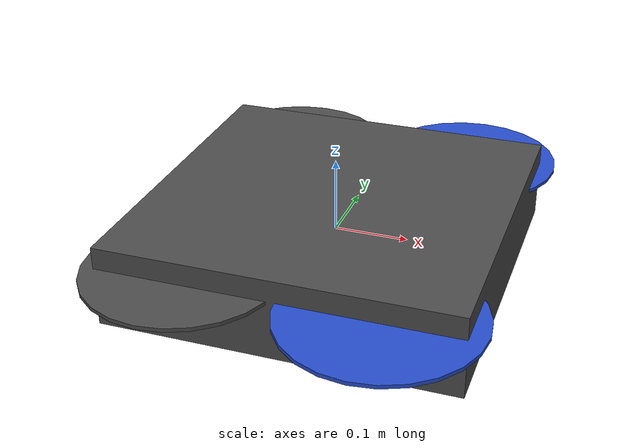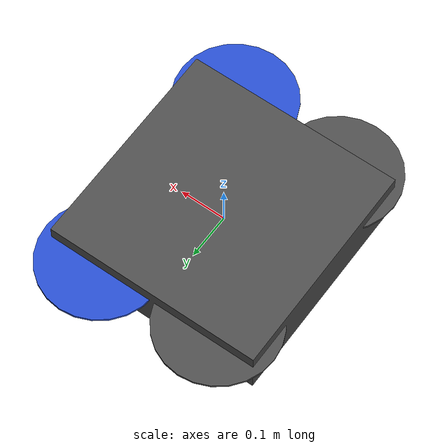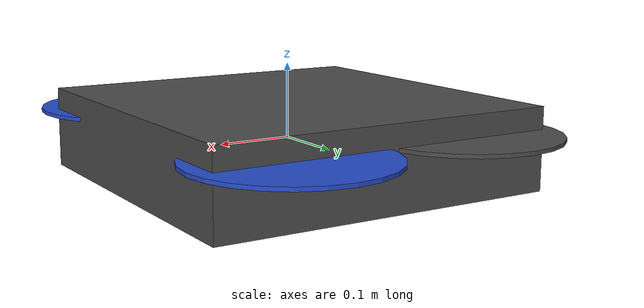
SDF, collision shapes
<?xml version="1.0"?>
<sdf version='1.6'>
  <model name='iris'>
    <link name='base_link'>
      <pose frame=''>0 0 0 0 -0 0</pose>
      <inertial>
        <pose frame=''>0.007977 0 -0.002393 0 -0 0</pose>
        <mass>1.63003</mass>
        <inertia>
          <ixx>0.0348681</ixx>
          <ixy>-5.91781e-08</ixy>
          <ixz>0.000358969</ixz>
          <iyy>0.0472013</iyy>
          <iyz>1.24503e-08</iyz>
          <izz>0.0989008</izz>
        </inertia>
      </inertial>
      <collision name='base_link_inertia_collision'>
        <pose frame=''>0 0 0 0 -0 0</pose>
        <geometry>
          <box>
            <size>0.47 0.47 0.11</size>
          </box>
        </geometry>
        <surface>
          <contact>
            <ode>
              <min_depth>0.001</min_depth>
              <max_vel>0</max_vel>
            </ode>
          </contact>
          <friction>
            <ode/>
          </friction>
        </surface>
      </collision>
      <collision name='base_link_fixed_joint_lump__/vi_sensor/vi_sensor_link_collision_1'>
        <pose frame=''>0.1 0 -0.03 0 0.1 0</pose>
        <geometry>
          <box>
            <size>0.03 0.133 0.057</size>
          </box>
        </geometry>
      </collision>
      <collision name='base_link_fixed_joint_lump__/vi_sensor/camera_depth_link_collision_2'>
        <pose frame=''>0.115574 0.055 -0.02503 0 0.1 0</pose>
        <geometry>
          <cylinder>
            <length>0.01</length>
            <radius>0.007</radius>
          </cylinder>
        </geometry>
        <surface>
          <contact>
            <ode/>
          </contact>
          <friction>
            <ode/>
          </friction>
        </surface>
      </collision>
      <collision name='base_link_fixed_joint_lump__/vi_sensor/camera_left_link_collision_3'>
        <pose frame=''>0.115574 0.055 -0.02503 0 0.1 0</pose>
        <geometry>
          <cylinder>
            <length>0.01</length>
            <radius>0.007</radius>
          </cylinder>
        </geometry>
        <surface>
          <contact>
            <ode/>
          </contact>
          <friction>
            <ode/>
          </friction>
        </surface>
      </collision>
      <collision name='base_link_fixed_joint_lump__/vi_sensor/camera_right_link_collision_4'>
        <pose frame=''>0.115574 -0.055 -0.02503 0 0.1 0</pose>
        <geometry>
          <cylinder>
            <length>0.01</length>
            <radius>0.007</radius>
          </cylinder>
        </geometry>
        <surface>
          <contact>
            <ode/>
          </contact>
          <friction>
            <ode/>
          </friction>
        </surface>
      </collision>
      <visual name='base_link_inertia_visual'>
        <pose frame=''>0 0 0 0 -0 0</pose>
        <geometry>
          <mesh>
            <scale>1 1 1</scale>
            <uri>model://rotors_description/meshes/iris.stl</uri>
          </mesh>
        </geometry>
        <material>
          <script>
            <name>Gazebo/DarkGrey</name>
            <uri>file://media/materials/scripts/gazebo.material</uri>
          </script>
        </material>
      </visual>
      <visual name='base_link_fixed_joint_lump__/vi_sensor/vi_sensor_link_visual_1'>
        <pose frame=''>0.1 0 -0.03 0 0.1 0</pose>
        <geometry>
          <mesh>
            <scale>1 1 1</scale>
            <uri>model://rotors_description/meshes/vi_sensor.dae</uri>
          </mesh>
        </geometry>
      </visual>
      <velocity_decay/>
      <velocity_decay/>
      <sensor name='/vi_sensor_camera_{camera_suffix}' type='depth'>
        <always_on>1</always_on>
        <update_rate>30</update_rate>
        <camera name='__default__'>
          <horizontal_fov>2</horizontal_fov>
          <image>
            <format>L8</format>
            <width>640</width>
            <height>480</height>
          </image>
          <clip>
            <near>0.01</near>
            <far>100</far>
          </clip>
        </camera>
        <plugin name='/vi_sensor_camera_{camera_suffix}' filename='libgazebo_ros_openni_kinect.so'>
          <robotNamespace>/vi_sensor</robotNamespace>
          <alwaysOn>true</alwaysOn>
          <baseline>0.11</baseline>
          <updateRate>30.0</updateRate>
          <cameraName>camera_depth</cameraName>
          <imageTopicName>camera/image_raw</imageTopicName>
          <cameraInfoTopicName>camera/camera_info</cameraInfoTopicName>
          <depthImageTopicName>depth/disparity</depthImageTopicName>
          <depthImageCameraInfoTopicName>depth/camera_info</depthImageCameraInfoTopicName>
          <pointCloudTopicName>depth/points</pointCloudTopicName>
          <frameName>camera_depth_optical_center_link</frameName>
          <pointCloudCutoff>0.5</pointCloudCutoff>
          <distortionK1>0.0</distortionK1>
          <distortionK2>0.0</distortionK2>
          <distortionK3>0.0</distortionK3>
          <distortionT1>0.0</distortionT1>
          <distortionT2>0.0</distortionT2>
        </plugin>
        <pose frame=''>0.115574 0.055 -0.02503 0 0.1 0</pose>
      </sensor>
      <velocity_decay/>
      <sensor name='/vi_sensor_camera_left' type='camera'>
        <update_rate>30</update_rate>
        <camera name='head'>
          <horizontal_fov>1.39626</horizontal_fov>
          <image>
            <width>752</width>
            <height>480</height>
            <format>L8</format>
          </image>
          <clip>
            <near>0.02</near>
            <far>30</far>
          </clip>
          <noise>
            <type>gaussian</type>
            <mean>0</mean>
            <stddev>0.007</stddev>
          </noise>
        </camera>
        <plugin name='/vi_sensor_camera_left_controller' filename='libgazebo_ros_camera.so'>
          <robotNamespace>/vi_sensor</robotNamespace>
          <alwaysOn>true</alwaysOn>
          <updateRate>30.0</updateRate>
          <cameraName>camera_left</cameraName>
          <imageTopicName>image_raw</imageTopicName>
          <cameraInfoTopicName>camera_info</cameraInfoTopicName>
          <frameName>camera_left_link</frameName>
          <hackBaseline>0.0</hackBaseline>
          <distortionK1>0.0</distortionK1>
          <distortionK2>0.0</distortionK2>
          <distortionK3>0.0</distortionK3>
          <distortionT1>0.0</distortionT1>
          <distortionT2>0.0</distortionT2>
        </plugin>
        <pose frame=''>0.115574 0.055 -0.02503 0 0.1 0</pose>
      </sensor>
      <gravity>1</gravity>
      <velocity_decay/>
      <self_collide>0</self_collide>
      <sensor name='/vi_sensor_camera_right' type='camera'>
        <update_rate>30</update_rate>
        <camera name='head'>
          <horizontal_fov>1.39626</horizontal_fov>
          <image>
            <width>752</width>
            <height>480</height>
            <format>L8</format>
          </image>
          <clip>
            <near>0.02</near>
            <far>30</far>
          </clip>
          <noise>
            <type>gaussian</type>
            <mean>0</mean>
            <stddev>0.007</stddev>
          </noise>
        </camera>
        <plugin name='/vi_sensor_camera_right_controller' filename='libgazebo_ros_camera.so'>
          <robotNamespace>/vi_sensor</robotNamespace>
          <alwaysOn>true</alwaysOn>
          <updateRate>30.0</updateRate>
          <cameraName>camera_right</cameraName>
          <imageTopicName>image_raw</imageTopicName>
          <cameraInfoTopicName>camera_info</cameraInfoTopicName>
          <frameName>camera_right_link</frameName>
          <hackBaseline>0.0</hackBaseline>
          <distortionK1>0.0</distortionK1>
          <distortionK2>0.0</distortionK2>
          <distortionK3>0.0</distortionK3>
          <distortionT1>0.0</distortionT1>
          <distortionT2>0.0</distortionT2>
        </plugin>
        <pose frame=''>0.115574 -0.055 -0.02503 0 0.1 0</pose>
      </sensor>
    </link>
    <link name='/imu_link'>
      <pose frame=''>0 0 0 0 -0 0</pose>
      <inertial>
        <pose frame=''>0 0 0 0 -0 0</pose>
        <mass>0.015</mass>
        <inertia>
          <ixx>1e-05</ixx>
          <ixy>0</ixy>
          <ixz>0</ixz>
          <iyy>1e-05</iyy>
          <iyz>0</iyz>
          <izz>1e-05</izz>
        </inertia>
      </inertial>
    </link>
    <joint name='/imu_joint' type='revolute'>
      <child>/imu_link</child>
      <parent>base_link</parent>
      <axis>
        <xyz>1 0 0</xyz>
        <limit>
          <lower>0</lower>
          <upper>0</upper>
          <effort>0</effort>
          <velocity>0</velocity>
        </limit>
        <dynamics>
          <spring_reference>0</spring_reference>
          <spring_stiffness>0</spring_stiffness>
        </dynamics>
        <use_parent_model_frame>1</use_parent_model_frame>
      </axis>
    </joint>
    <link name='/odometry_sensor1_link'>
      <pose frame=''>0 0 0 0 -0 0</pose>
      <inertial>
        <pose frame=''>0 0 0 0 -0 0</pose>
        <mass>1e-05</mass>
        <inertia>
          <ixx>1e-05</ixx>
          <ixy>0</ixy>
          <ixz>0</ixz>
          <iyy>1e-05</iyy>
          <iyz>0</iyz>
          <izz>1e-05</izz>
        </inertia>
      </inertial>
    </link>
    <joint name='/odometry_sensor1_joint' type='revolute'>
      <child>/odometry_sensor1_link</child>
      <parent>base_link</parent>
      <axis>
        <xyz>1 0 0</xyz>
        <limit>
          <lower>0</lower>
          <upper>0</upper>
          <effort>0</effort>
          <velocity>0</velocity>
        </limit>
        <dynamics>
          <spring_reference>0</spring_reference>
          <spring_stiffness>0</spring_stiffness>
        </dynamics>
        <use_parent_model_frame>1</use_parent_model_frame>
      </axis>
    </joint>
    <link name='rotor_0'>
      <pose frame=''>0.13 -0.22 0.023 0 -0 0</pose>
      <inertial>
        <pose frame=''>0 0 0 0 -0 0</pose>
        <mass>0.005</mass>
        <inertia>
          <ixx>9.75e-07</ixx>
          <ixy>0</ixy>
          <ixz>0</ixz>
          <iyy>0.000273104</iyy>
          <iyz>0</iyz>
          <izz>0.000274004</izz>
        </inertia>
      </inertial>
      <collision name='rotor_0_collision'>
        <pose frame=''>0 0 0 0 -0 0</pose>
        <geometry>
          <cylinder>
            <length>0.005</length>
            <radius>0.128</radius>
          </cylinder>
        </geometry>
        <surface>
          <contact>
            <ode/>
          </contact>
          <friction>
            <ode/>
          </friction>
        </surface>
      </collision>
      <visual name='rotor_0_visual'>
        <pose frame=''>0 0 0 0 -0 0</pose>
        <geometry>
          <mesh>
            <scale>1 1 1</scale>
            <uri>model://rotors_description/meshes/iris_prop_ccw.dae</uri>
          </mesh>
        </geometry>
        <material>
          <script>
            <name>Gazebo/Blue</name>
            <uri>file://media/materials/scripts/gazebo.material</uri>
          </script>
        </material>
      </visual>
      <gravity>1</gravity>
      <velocity_decay/>
      <self_collide>0</self_collide>
    </link>
    <joint name='rotor_0_joint' type='revolute'>
      <child>rotor_0</child>
      <parent>base_link</parent>
      <axis>
        <xyz>0 0 1</xyz>
        <limit>
          <lower>-1e+16</lower>
          <upper>1e+16</upper>
        </limit>
        <dynamics>
          <spring_reference>0</spring_reference>
          <spring_stiffness>0</spring_stiffness>
        </dynamics>
        <use_parent_model_frame>1</use_parent_model_frame>
      </axis>
    </joint>
    <link name='rotor_1'>
      <pose frame=''>-0.13 0.2 0.023 0 -0 0</pose>
      <inertial>
        <pose frame=''>0 0 0 0 -0 0</pose>
        <mass>0.005</mass>
        <inertia>
          <ixx>9.75e-07</ixx>
          <ixy>0</ixy>
          <ixz>0</ixz>
          <iyy>0.000273104</iyy>
          <iyz>0</iyz>
          <izz>0.000274004</izz>
        </inertia>
      </inertial>
      <collision name='rotor_1_collision'>
        <pose frame=''>0 0 0 0 -0 0</pose>
        <geometry>
          <cylinder>
            <length>0.005</length>
            <radius>0.128</radius>
          </cylinder>
        </geometry>
        <surface>
          <contact>
            <ode/>
          </contact>
          <friction>
            <ode/>
          </friction>
        </surface>
      </collision>
      <visual name='rotor_1_visual'>
        <pose frame=''>0 0 0 0 -0 0</pose>
        <geometry>
          <mesh>
            <scale>1 1 1</scale>
            <uri>model://rotors_description/meshes/iris_prop_ccw.dae</uri>
          </mesh>
        </geometry>
        <material>
          <script>
            <name>Gazebo/DarkGrey</name>
            <uri>file://media/materials/scripts/gazebo.material</uri>
          </script>
        </material>
      </visual>
      <gravity>1</gravity>
      <velocity_decay/>
      <self_collide>0</self_collide>
    </link>
    <joint name='rotor_1_joint' type='revolute'>
      <child>rotor_1</child>
      <parent>base_link</parent>
      <axis>
        <xyz>0 0 1</xyz>
        <limit>
          <lower>-1e+16</lower>
          <upper>1e+16</upper>
        </limit>
        <dynamics>
          <spring_reference>0</spring_reference>
          <spring_stiffness>0</spring_stiffness>
        </dynamics>
        <use_parent_model_frame>1</use_parent_model_frame>
      </axis>
    </joint>
    <link name='rotor_2'>
      <pose frame=''>0.13 0.22 0.023 0 -0 0</pose>
      <inertial>
        <pose frame=''>0 0 0 0 -0 0</pose>
        <mass>0.005</mass>
        <inertia>
          <ixx>9.75e-07</ixx>
          <ixy>0</ixy>
          <ixz>0</ixz>
          <iyy>0.000273104</iyy>
          <iyz>0</iyz>
          <izz>0.000274004</izz>
        </inertia>
      </inertial>
      <collision name='rotor_2_collision'>
        <pose frame=''>0 0 0 0 -0 0</pose>
        <geometry>
          <cylinder>
            <length>0.005</length>
            <radius>0.128</radius>
          </cylinder>
        </geometry>
        <surface>
          <contact>
            <ode/>
          </contact>
          <friction>
            <ode/>
          </friction>
        </surface>
      </collision>
      <visual name='rotor_2_visual'>
        <pose frame=''>0 0 0 0 -0 0</pose>
        <geometry>
          <mesh>
            <scale>1 1 1</scale>
            <uri>model://rotors_description/meshes/iris_prop_cw.dae</uri>
          </mesh>
        </geometry>
        <material>
          <script>
            <name>Gazebo/Blue</name>
            <uri>file://media/materials/scripts/gazebo.material</uri>
          </script>
        </material>
      </visual>
      <gravity>1</gravity>
      <velocity_decay/>
      <self_collide>0</self_collide>
    </link>
    <joint name='rotor_2_joint' type='revolute'>
      <child>rotor_2</child>
      <parent>base_link</parent>
      <axis>
        <xyz>0 0 1</xyz>
        <limit>
          <lower>-1e+16</lower>
          <upper>1e+16</upper>
        </limit>
        <dynamics>
          <spring_reference>0</spring_reference>
          <spring_stiffness>0</spring_stiffness>
        </dynamics>
        <use_parent_model_frame>1</use_parent_model_frame>
      </axis>
    </joint>
    <link name='rotor_3'>
      <pose frame=''>-0.13 -0.2 0.023 0 -0 0</pose>
      <inertial>
        <pose frame=''>0 0 0 0 -0 0</pose>
        <mass>0.005</mass>
        <inertia>
          <ixx>9.75e-07</ixx>
          <ixy>0</ixy>
          <ixz>0</ixz>
          <iyy>0.000273104</iyy>
          <iyz>0</iyz>
          <izz>0.000274004</izz>
        </inertia>
      </inertial>
      <collision name='rotor_3_collision'>
        <pose frame=''>0 0 0 0 -0 0</pose>
        <geometry>
          <cylinder>
            <length>0.005</length>
            <radius>0.128</radius>
          </cylinder>
        </geometry>
        <surface>
          <contact>
            <ode/>
          </contact>
          <friction>
            <ode/>
          </friction>
        </surface>
      </collision>
      <visual name='rotor_3_visual'>
        <pose frame=''>0 0 0 0 -0 0</pose>
        <geometry>
          <mesh>
            <scale>1 1 1</scale>
            <uri>model://rotors_description/meshes/iris_prop_cw.dae</uri>
          </mesh>
        </geometry>
        <material>
          <script>
            <name>Gazebo/DarkGrey</name>
            <uri>file://media/materials/scripts/gazebo.material</uri>
          </script>
        </material>
      </visual>
      <gravity>1</gravity>
      <velocity_decay/>
      <self_collide>0</self_collide>
    </link>
    <joint name='rotor_3_joint' type='revolute'>
      <child>rotor_3</child>
      <parent>base_link</parent>
      <axis>
        <xyz>0 0 1</xyz>
        <limit>
          <lower>-1e+16</lower>
          <upper>1e+16</upper>
        </limit>
        <dynamics>
          <spring_reference>0</spring_reference>
          <spring_stiffness>0</spring_stiffness>
        </dynamics>
        <use_parent_model_frame>1</use_parent_model_frame>
      </axis>
    </joint>
    <plugin name='rosbag' filename='librotors_gazebo_multirotor_base_plugin.so'>
      <robotNamespace/>
      <linkName>base_link</linkName>
      <rotorVelocitySlowdownSim>10</rotorVelocitySlowdownSim>
    </plugin>
    <plugin name='front_right_motor_model' filename='librotors_gazebo_motor_model.so'>
      <robotNamespace/>
      <jointName>rotor_0_joint</jointName>
      <linkName>rotor_0</linkName>
      <turningDirection>ccw</turningDirection>
      <timeConstantUp>0.0125</timeConstantUp>
      <timeConstantDown>0.025</timeConstantDown>
      <maxRotVelocity>1100</maxRotVelocity>
      <motorConstant>8.54858e-06</motorConstant>
      <momentConstant>0.06</momentConstant>
      <commandSubTopic>/gazebo/command/motor_speed</commandSubTopic>
      <motorNumber>0</motorNumber>
      <rotorDragCoefficient>0.000806428</rotorDragCoefficient>
      <rollingMomentCoefficient>1e-06</rollingMomentCoefficient>
      <motorSpeedPubTopic>/motor_speed/0</motorSpeedPubTopic>
      <rotorVelocitySlowdownSim>10</rotorVelocitySlowdownSim>
    </plugin>
    <plugin name='back_left_motor_model' filename='librotors_gazebo_motor_model.so'>
      <robotNamespace/>
      <jointName>rotor_1_joint</jointName>
      <linkName>rotor_1</linkName>
      <turningDirection>ccw</turningDirection>
      <timeConstantUp>0.0125</timeConstantUp>
      <timeConstantDown>0.025</timeConstantDown>
      <maxRotVelocity>1100</maxRotVelocity>
      <motorConstant>8.54858e-06</motorConstant>
      <momentConstant>0.06</momentConstant>
      <commandSubTopic>/gazebo/command/motor_speed</commandSubTopic>
      <motorNumber>1</motorNumber>
      <rotorDragCoefficient>0.000806428</rotorDragCoefficient>
      <rollingMomentCoefficient>1e-06</rollingMomentCoefficient>
      <motorSpeedPubTopic>/motor_speed/1</motorSpeedPubTopic>
      <rotorVelocitySlowdownSim>10</rotorVelocitySlowdownSim>
    </plugin>
    <plugin name='front_left_motor_model' filename='librotors_gazebo_motor_model.so'>
      <robotNamespace/>
      <jointName>rotor_2_joint</jointName>
      <linkName>rotor_2</linkName>
      <turningDirection>cw</turningDirection>
      <timeConstantUp>0.0125</timeConstantUp>
      <timeConstantDown>0.025</timeConstantDown>
      <maxRotVelocity>1100</maxRotVelocity>
      <motorConstant>8.54858e-06</motorConstant>
      <momentConstant>0.06</momentConstant>
      <commandSubTopic>/gazebo/command/motor_speed</commandSubTopic>
      <motorNumber>2</motorNumber>
      <rotorDragCoefficient>0.000806428</rotorDragCoefficient>
      <rollingMomentCoefficient>1e-06</rollingMomentCoefficient>
      <motorSpeedPubTopic>/motor_speed/2</motorSpeedPubTopic>
      <rotorVelocitySlowdownSim>10</rotorVelocitySlowdownSim>
    </plugin>
    <plugin name='back_right_motor_model' filename='librotors_gazebo_motor_model.so'>
      <robotNamespace/>
      <jointName>rotor_3_joint</jointName>
      <linkName>rotor_3</linkName>
      <turningDirection>cw</turningDirection>
      <timeConstantUp>0.0125</timeConstantUp>
      <timeConstantDown>0.025</timeConstantDown>
      <maxRotVelocity>1100</maxRotVelocity>
      <motorConstant>8.54858e-06</motorConstant>
      <momentConstant>0.06</momentConstant>
      <commandSubTopic>/gazebo/command/motor_speed</commandSubTopic>
      <motorNumber>3</motorNumber>
      <rotorDragCoefficient>0.000806428</rotorDragCoefficient>
      <rollingMomentCoefficient>1e-06</rollingMomentCoefficient>
      <motorSpeedPubTopic>/motor_speed/3</motorSpeedPubTopic>
      <rotorVelocitySlowdownSim>10</rotorVelocitySlowdownSim>
    </plugin>
    <plugin name='gps_plugin' filename='libgazebo_gps_plugin.so'>
      <robotNamespace/>
      <gpsNoise>false</gpsNoise>
    </plugin>
    <plugin name='mavlink_interface' filename='librotors_gazebo_mavlink_interface.so'>
      <robotNamespace/>
      <imuSubTopic>/imu</imuSubTopic>
      <gpsSubTopic>/gps</gpsSubTopic>
      <mavlink_addr>INADDR_ANY</mavlink_addr>
      <mavlink_udp_port>14560</mavlink_udp_port>
      <serialEnabled>false</serialEnabled>
      <serialDevice>/dev/ttyACM0</serialDevice>
      <baudRate>921600</baudRate>
      <qgc_addr>INADDR_ANY</qgc_addr>
      <qgc_udp_port>14550</qgc_udp_port>
      <hil_mode>false</hil_mode>
      <hil_state_level>false</hil_state_level>
      <vehicle_is_tailsitter>false</vehicle_is_tailsitter>
      <motorSpeedCommandPubTopic>/gazebo/command/motor_speed</motorSpeedCommandPubTopic>
      <control_channels>
        <channel name='rotor1'>
          <input_index>0</input_index>
          <input_offset>0</input_offset>
          <input_scaling>1000</input_scaling>
          <zero_position_disarmed>0</zero_position_disarmed>
          <zero_position_armed>100</zero_position_armed>
          <joint_control_type>velocity</joint_control_type>
        </channel>
        <channel name='rotor2'>
          <input_index>1</input_index>
          <input_offset>0</input_offset>
          <input_scaling>1000</input_scaling>
          <zero_position_disarmed>0</zero_position_disarmed>
          <zero_position_armed>100</zero_position_armed>
          <joint_control_type>velocity</joint_control_type>
        </channel>
        <channel name='rotor3'>
          <input_index>2</input_index>
          <input_offset>0</input_offset>
          <input_scaling>1000</input_scaling>
          <zero_position_disarmed>0</zero_position_disarmed>
          <zero_position_armed>100</zero_position_armed>
          <joint_control_type>velocity</joint_control_type>
        </channel>
        <channel name='rotor4'>
          <input_index>3</input_index>
          <input_offset>0</input_offset>
          <input_scaling>1000</input_scaling>
          <zero_position_disarmed>0</zero_position_disarmed>
          <zero_position_armed>100</zero_position_armed>
          <joint_control_type>velocity</joint_control_type>
        </channel>
        <channel name='rotor5'>
          <input_index>4</input_index>
          <input_offset>1</input_offset>
          <input_scaling>324.6</input_scaling>
          <zero_position_disarmed>0</zero_position_disarmed>
          <zero_position_armed>0</zero_position_armed>
          <joint_control_type>velocity</joint_control_type>
          <joint_control_pid>
            <p>0.1</p>
            <i>0</i>
            <d>0</d>
            <iMax>0.0</iMax>
            <iMin>0.0</iMin>
            <cmdMax>2</cmdMax>
            <cmdMin>-2</cmdMin>
          </joint_control_pid>
          <joint_name>zephyr_delta_wing::propeller_joint</joint_name>
        </channel>
        <channel name='rotor6'>
          <input_index>5</input_index>
          <input_offset>0</input_offset>
          <input_scaling>0.524</input_scaling>
          <zero_position_disarmed>0</zero_position_disarmed>
          <zero_position_armed>0</zero_position_armed>
          <joint_control_type>position</joint_control_type>
          <joint_name>zephyr_delta_wing::flap_left_joint</joint_name>
          <joint_control_pid>
            <p>10.0</p>
            <i>0</i>
            <d>0</d>
            <iMax>0</iMax>
            <iMin>0</iMin>
            <cmdMax>20</cmdMax>
            <cmdMin>-20</cmdMin>
          </joint_control_pid>
        </channel>
        <channel name='rotor7'>
          <input_index>6</input_index>
          <input_offset>0</input_offset>
          <input_scaling>0.524</input_scaling>
          <zero_position_disarmed>0</zero_position_disarmed>
          <zero_position_armed>0</zero_position_armed>
          <joint_control_type>position</joint_control_type>
          <joint_name>zephyr_delta_wing::flap_right_joint</joint_name>
          <joint_control_pid>
            <p>10.0</p>
            <i>0</i>
            <d>0</d>
            <iMax>0</iMax>
            <iMin>0</iMin>
            <cmdMax>20</cmdMax>
            <cmdMin>-20</cmdMin>
          </joint_control_pid>
        </channel>
        <channel name='rotor8'>
          <input_index>7</input_index>
          <input_offset>0</input_offset>
          <input_scaling>0.524</input_scaling>
          <zero_position_disarmed>0</zero_position_disarmed>
          <zero_position_armed>0</zero_position_armed>
          <joint_control_type>position</joint_control_type>
        </channel>
      </control_channels>
    </plugin>
    <plugin name='rotors_gazebo_imu_plugin' filename='librotors_gazebo_imu_plugin.so'>
      <robotNamespace/>
      <linkName>/imu_link</linkName>
      <imuTopic>/imu</imuTopic>
      <gyroscopeNoiseDensity>0.0003394</gyroscopeNoiseDensity>
      <gyroscopeRandomWalk>3.8785e-05</gyroscopeRandomWalk>
      <gyroscopeBiasCorrelationTime>1000.0</gyroscopeBiasCorrelationTime>
      <gyroscopeTurnOnBiasSigma>0.0087</gyroscopeTurnOnBiasSigma>
      <accelerometerNoiseDensity>0.0001</accelerometerNoiseDensity>
      <accelerometerRandomWalk>0.0001</accelerometerRandomWalk>
      <accelerometerBiasCorrelationTime>300.0</accelerometerBiasCorrelationTime>
      <accelerometerTurnOnBiasSigma>0.196</accelerometerTurnOnBiasSigma>
    </plugin>
    <static>0</static>
    <plugin name='odometry_sensor1' filename='librotors_gazebo_odometry_plugin.so'>
      <linkName>/odometry_sensor1_link</linkName>
      <robotNamespace/>
      <poseTopic>odometry_sensor1/pose</poseTopic>
      <poseWithCovarianceTopic>odometry_sensor1/pose_with_covariance</poseWithCovarianceTopic>
      <positionTopic>odometry_sensor1/position</positionTopic>
      <transformTopic>odometry_sensor1/transform</transformTopic>
      <odometryTopic>odometry_sensor1/odometry</odometryTopic>
      <parentFrameId>world</parentFrameId>
      <measurementDivisor>1</measurementDivisor>
      <measurementDelay>0</measurementDelay>
      <unknownDelay>0.0</unknownDelay>
      <noiseNormalPosition>0 0 0</noiseNormalPosition>
      <noiseNormalQuaternion>0 0 0</noiseNormalQuaternion>
      <noiseNormalLinearVelocity>0 0 0</noiseNormalLinearVelocity>
      <noiseNormalAngularVelocity>0 0 0</noiseNormalAngularVelocity>
      <noiseUniformPosition>0 0 0</noiseUniformPosition>
      <noiseUniformQuaternion>0 0 0</noiseUniformQuaternion>
      <noiseUniformLinearVelocity>0 0 0</noiseUniformLinearVelocity>
      <noiseUniformAngularVelocity>0 0 0</noiseUniformAngularVelocity>
    </plugin>
  <plugin name="p3d_base_controller" filename="libgazebo_ros_p3d.so">
    <alwaysOn>true</alwaysOn>
    <updateRate>50.0</updateRate>
    <bodyName>base_link</bodyName>
    <topicName>ground_truth/state</topicName>
    <gaussianNoise>0.01</gaussianNoise>
    <frameName>world</frameName>
    <xyzOffsets>0 0 0</xyzOffsets>
    <rpyOffsets>0 0 0</rpyOffsets>
  </plugin>
  </model>
</sdf>
